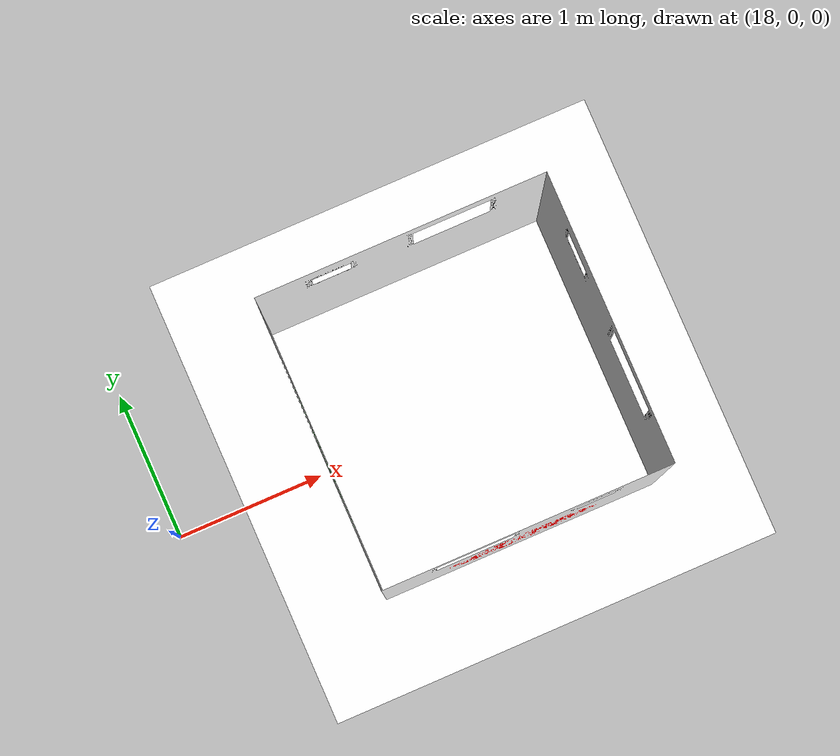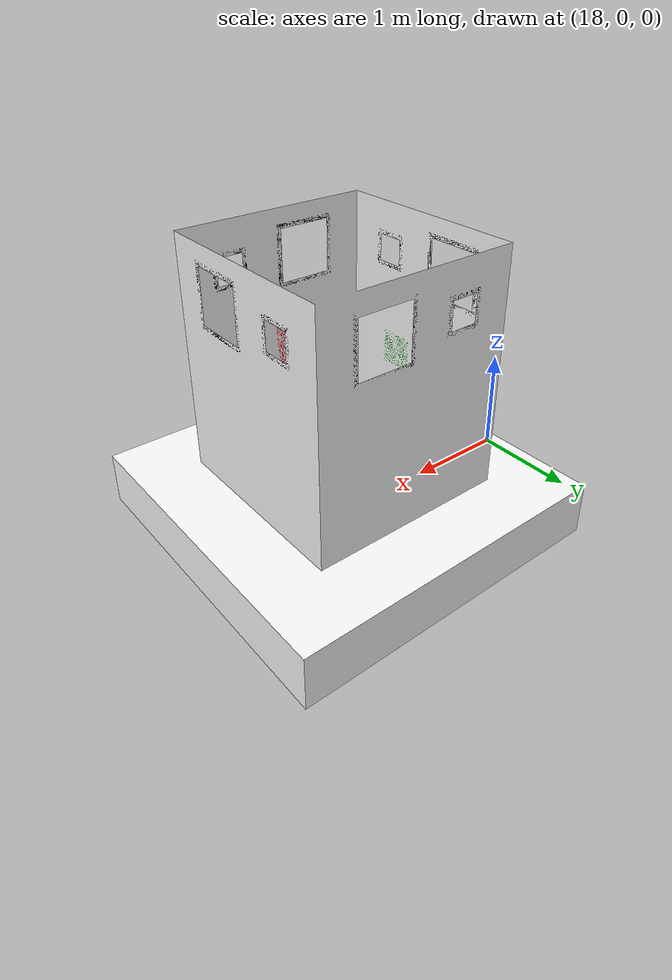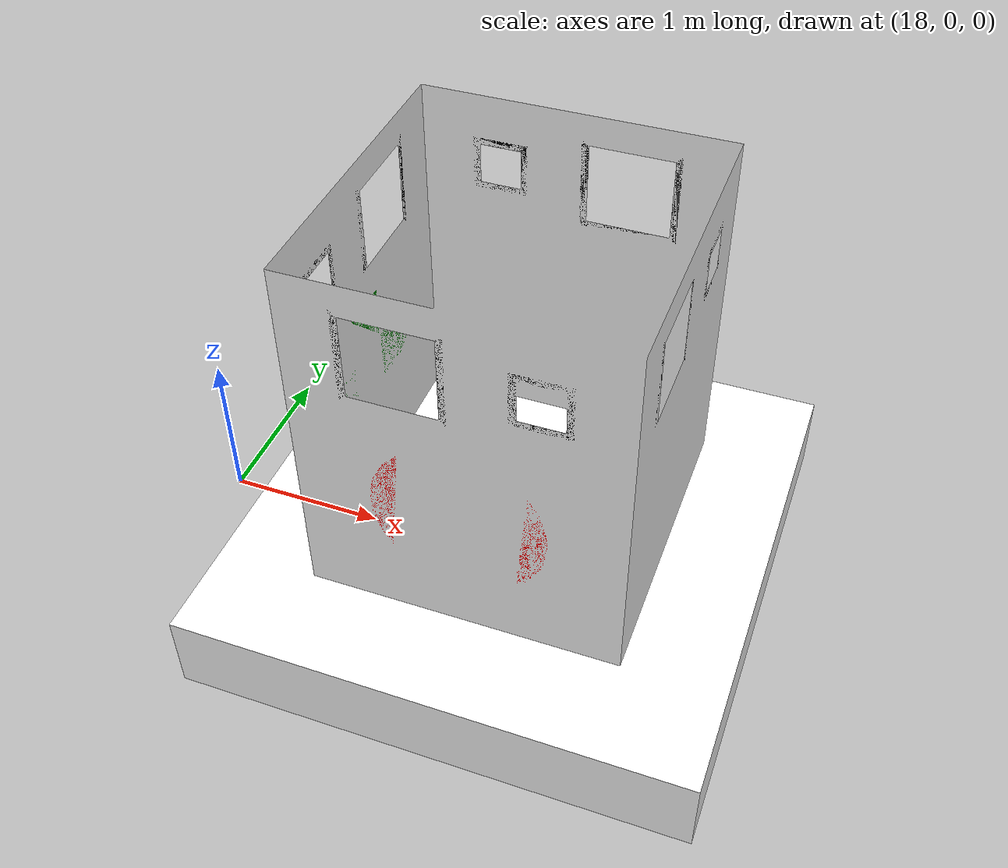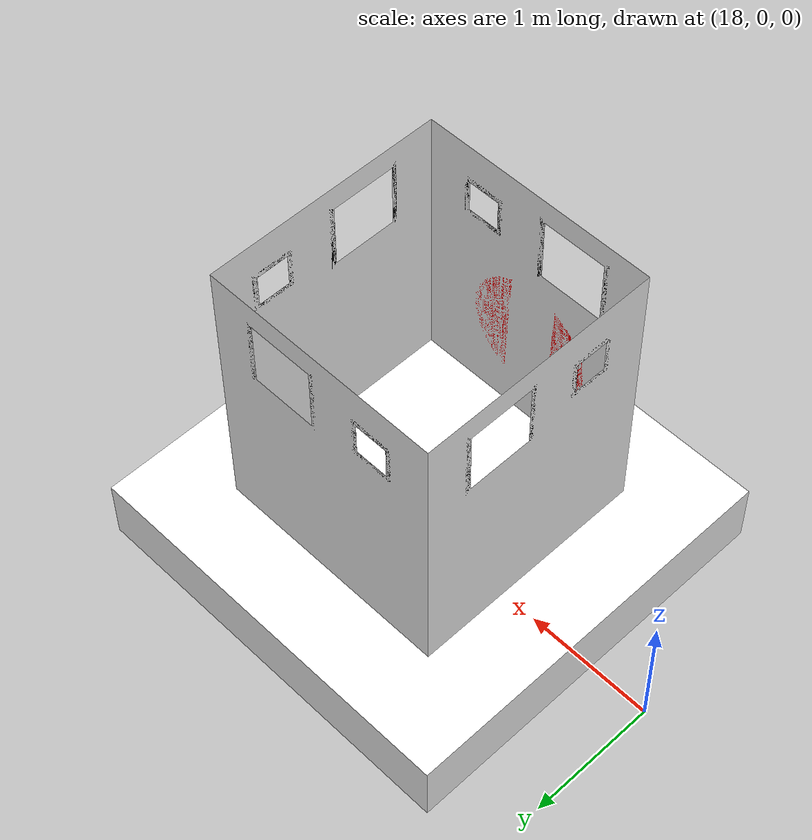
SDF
<?xml version="1.0" ?>
<sdf version="1.4">
  <world name="SandIsland">
    <scene>
      <sky>
        <clouds>
          <speed>12</speed>
        </clouds>
      </sky>
    </scene>

    <wind>
      <linear_velocity>10 0 0</linear_velocity> <!-- Wind linear velocity -->
    </wind >

    <!-- A global light source -->
    <light type="directional" name="sun_0">
      <cast_shadows>true</cast_shadows>
      <pose>0 0 10 0 0 0</pose>
      <diffuse>0.8 0.8 0.8 1</diffuse>
      <specular>0.2 0.2 0.2 1</specular>
      <attenuation>
        <range>3000</range>
        <constant>0.9</constant>
        <linear>0.01</linear>
        <quadratic>0.001</quadratic>
      </attenuation>
      <direction>-0.5 0.1 -0.9</direction>
    </light>

    <gui fullscreen='0'>
      <camera name='user_camera'>
        <pose>240.235 110.553 61.4147 0 0.304 -2.78</pose>
        <view_controller>orbit</view_controller>
      </camera>
    </gui>

    <include>
      <pose> 0 0 0 0 0 0 </pose>
      <uri>model://models/ocean</uri>
    </include>

    <!-- Deliever buoy -->
    <light type="point" name="point2">
      <cast_shadows>false</cast_shadows>
      <pose> 20 0 1 0 0 0</pose>
    </light>
    <include>
      <pose> 20 0 0 0 0 0 </pose>
      <uri>model://models/deliever_buoy</uri>
      <static>1</static>
    </include>

  </world>
</sdf>

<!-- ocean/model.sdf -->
<sdf version="1.6">
    <model name="ocean">
        <static>true</static>
        <link name="link">
            <visual name="visual">
                <geometry>
                    <mesh>
                        <uri>meshes/waterlow_small.dae</uri>
                    </mesh>
                </geometry>
                <plugin filename="gz-sim-shader-param-system" name="gz::sim::systems::ShaderParam">
                    <shader language="glsl">
                        <vertex>materials/programs/GerstnerWaves_vs_330.glsl</vertex>
                        <fragment>materials/programs/GerstnerWaves_fs_330.glsl</fragment>
                    </shader>
                    <shader language="metal">
                        <vertex>materials/programs/GerstnerWaves_vs.metal</vertex>
                        <fragment>materials/programs/GerstnerWaves_fs.metal</fragment>
                    </shader>
                    <param>
                        <shader>vertex</shader>
                        <name>Nwaves</name>
                        <type>int</type>
                        <value>0</value>
                    </param>
                    <param>
                        <shader>vertex</shader>
                        <name>rescale</name>
                        <type>float</type>
                        <value>0.125</value>
                    </param>
                    <param>
                        <shader>vertex</shader>
                        <name>bumpScale</name>
                        <type>float_array</type>
                        <value>75 75</value>
                    </param>
                    <param>
                        <shader>vertex</shader>
                        <name>bumpSpeed</name>
                        <type>float_array</type>
                        <value>0.01 0.0</value>
                    </param>
                    <param>
                        <shader>vertex</shader>
                        <name>amplitude</name>
                        <type>float_array</type>
                        <value>0.42 0.28, 0.21</value>
                    </param>
                    <param>
                        <shader>vertex</shader>
                        <name>wavenumber</name>
                        <type>float_array</type>
                        <value>0.028 0.0896 0.0504</value>
                    </param>
                    <param>
                        <shader>vertex</shader>
                        <name>omega</name>
                        <type>float_array</type>
                        <value>0.5 1.7 1.0</value>
                    </param>
                    <param>
                        <shader>vertex</shader>
                        <name>dir0</name>
                        <type>float_array</type>
                        <value>-1.0 0.0</value>
                    </param>
                    <param>
                        <shader>vertex</shader>
                        <name>dir1</name>
                        <type>float_array</type>
                        <value>-0.7 0.7</value>
                    </param>
                    <param>
                        <shader>vertex</shader>
                        <name>dir2</name>
                        <type>float_array</type>
                        <value>0.7 0.7</value>
                    </param>
                    <param>
                        <shader>vertex</shader>
                        <name>steepness</name>
                        <type>float_array</type>
                        <value>1.0 1.5 0.8</value>
                    </param>
                    <param>
                        <shader>vertex</shader>
                        <name>tau</name>
                        <type>float</type>
                        <value>2.0</value>
                    </param>
                    <param>
                        <shader>vertex</shader>
                        <name>camera_position_object_space</name>
                    </param>
                    <param>
                        <shader>vertex</shader>
                        <name>worldviewproj_matrix</name>
                    </param>
                    <param>
                        <shader>vertex</shader>
                        <name>t</name>
                        <value>TIME</value>
                    </param>
                    <param>
                        <shader>fragment</shader>
                        <name>hdrMultiplier</name>
                        <type>float</type>
                        <value>0.4</value>
                    </param>
                    <param>
                        <shader>fragment</shader>
                        <name>fresnelPower</name>
                        <type>float</type>
                        <value>5.0</value>
                    </param>
                    <param>
                        <shader>fragment</shader>
                        <name>shallowColor</name>
                        <type>float_array</type>
                        <value>0.0 0.1 0.2 1.0</value>
                    </param>
                    <param>
                        <shader>fragment</shader>
                        <name>deepColor</name>
                        <type>float_array</type>
                        <value>0.0 0.05 0.02 1.0</value>
                    </param>
                    <param>
                        <shader>fragment</shader>
                        <name>cubeMap</name>
                        <type>texture_cube</type>
                        <value>materials/textures/skybox_lowres.dds</value>
                        <!-- arg: texture coord set index -->
                        <arg>1</arg>
                    </param>
                    <param>
                        <shader>fragment</shader>
                        <name>bumpMap</name>
                        <type>texture</type>
                        <value>materials/textures/wave_normals.dds</value>
                    </param>
                </plugin>
            </visual>
        </link>
    </model>
</sdf>

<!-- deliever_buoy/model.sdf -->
<sdf version="1.4">
  <model name="deliever_buoy">
    <gazebo>
      <static>false</static>
    </gazebo>
    <link name="link">
      <pose>0 0 0 0 0 0</pose>
      <collision name="collision">
        <geometry>
          <mesh>
            <uri>model://deliever_buoy/meshes/detect_and_deliever.dae</uri>
          </mesh>
        </geometry>
      </collision>
      <visual name="visual">
        <geometry>
          <mesh>
            <uri>model://deliever_buoy/meshes/detect_and_deliever.dae</uri>
          </mesh>
        </geometry>
        <material>
          <lighting>1</lighting>
        </material>
      </visual>
      <inertial>
      	<origin
        xyz="0 0 0"
        rpy="0 0 0" />
        <mass>10</mass>
        <inertia>
          <ixx>10</ixx>
          <ixy>0</ixy>
          <ixz>0</ixz>
          <iyy>10</iyy>
          <iyz>0</iyz>
          <izz>10</izz>
        </inertia>
      </inertial>
    </link>
    <plugin name="BuoyancyPlugin" filename="libbuoyancy_gazebo_plugin.so">
      <fluid_density>1000</fluid_density>
      <fluid_level>0.0</fluid_level>
      <fluid_drag>50</fluid_drag>
      <link>
        <name>link</name>
        <center_of_volume>0 0 0.1</center_of_volume>
        <area>0.1</area>
        <height>0.3</height>
      </link>
    </plugin>
  </model>
</sdf>
